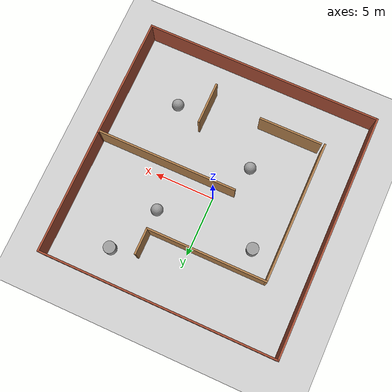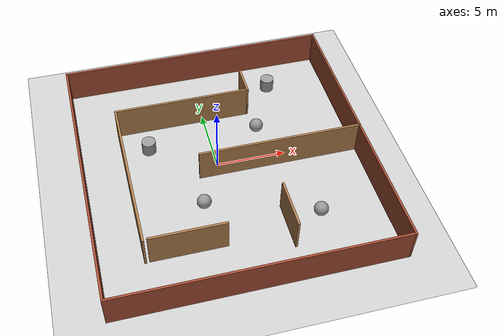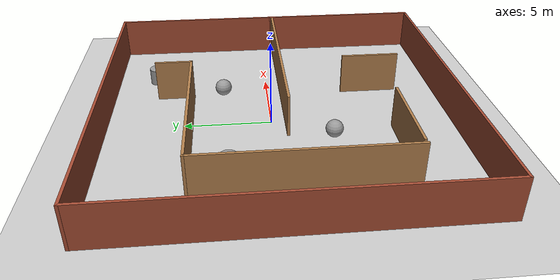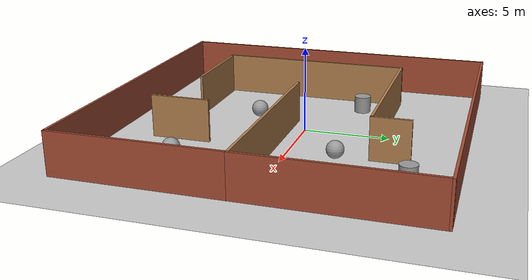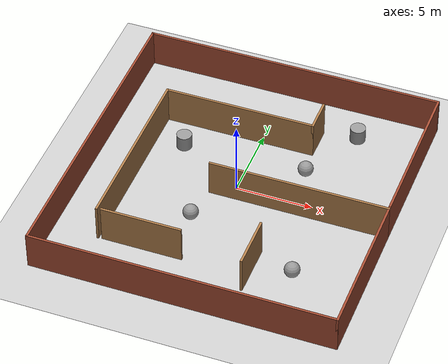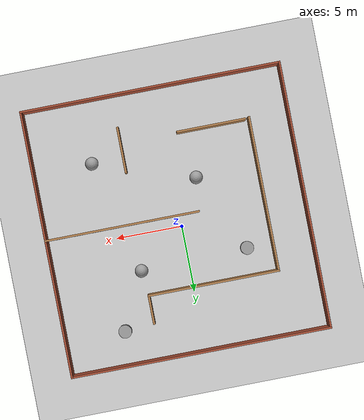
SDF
<sdf version="1.7">
 <world name="default">
  <light name="sun" type="directional">
   <pose>0 0 10 0 -0 0</pose>
   <diffuse>0.8 0.8 0.8 1</diffuse>
   <specular>0.2 0.2 0.2 1</specular>
   <attenuation>
    <range>1000</range>
    <constant>0.9</constant>
    <linear>0.01</linear>
    <quadratic>0.001</quadratic>
   </attenuation>
   <direction>-0.5 0.1 -0.9</direction>
   <spot><inner_angle>0</inner_angle><outer_angle>0</outer_angle><falloff>0</falloff></spot>
  </light>
  <model name="ground_plane">
   <static>1</static>
   <link name="link">
    <collision name="collision">
     <geometry><plane><normal>0 0 1</normal><size>100 100</size></plane></geometry>
     <surface>
      <contact><collide_bitmask>65535</collide_bitmask></contact>
      <friction><ode><mu>100</mu><mu2>50</mu2></ode></friction>
     </surface>
    </collision>
    <visual name="visual">
     <cast_shadows>0</cast_shadows>
     <geometry><plane><normal>0 0 1</normal><size>100 100</size></plane></geometry>
     <material>
      <script><uri>file://media/materials/scripts/gazebo.material</uri><name>Gazebo/Grey</name></script>
     </material>
    </visual>
   </link>
  </model>
  <gravity>0 0 -9.8</gravity>
  <magnetic_field>6e-06 2.3e-05 -4.2e-05</magnetic_field>
  <atmosphere type="adiabatic"/>
  <physics type="ode">
   <max_step_size>0.001</max_step_size>
   <real_time_factor>1</real_time_factor>
   <real_time_update_rate>1000</real_time_update_rate>
  </physics>
  <scene><ambient>0.4 0.4 0.4 1</ambient><background>0.7 0.7 0.7 1</background><shadows>1</shadows></scene>
  <spherical_coordinates>
   <surface_model>EARTH_WGS84</surface_model>
   <latitude_deg>0</latitude_deg>
   <longitude_deg>0</longitude_deg>
   <elevation>0</elevation>
   <heading_deg>0</heading_deg>
  </spherical_coordinates>
  <model name="world1">
   <pose>0.38 -0.56 0 0 -0 0</pose>
   <link name="Wall_0">
    <collision name="Wall_0_Collision">
     <geometry><box><size>11.75 0.15 2.5</size></box></geometry>
     <pose>0 0 1.25 0 -0 0</pose>
    </collision>
    <visual name="Wall_0_Visual">
     <pose>0 0 1.25 0 -0 0</pose>
     <geometry><box><size>11.75 0.15 2.5</size></box></geometry>
     <material>
      <script><uri>file://media/materials/scripts/gazebo.material</uri><name>Gazebo/Wood</name></script>
      <ambient>1 1 1 1</ambient>
     </material>
     <meta><layer>0</layer></meta>
    </visual>
    <pose>4 -0.3 0 0 -0 0</pose>
   </link>
   <link name="Wall_1">
    <collision name="Wall_1_Collision">
     <geometry><box><size>10.5 0.15 2.5</size></box></geometry>
     <pose>0 0 1.25 0 -0 0</pose>
    </collision>
    <visual name="Wall_1_Visual">
     <pose>0 0 1.25 0 -0 0</pose>
     <geometry><box><size>10.5 0.15 2.5</size></box></geometry>
     <material>
      <script><uri>file://media/materials/scripts/gazebo.material</uri><name>Gazebo/Bricks</name></script>
      <ambient>1 1 1 1</ambient>
     </material>
     <meta><layer>0</layer></meta>
    </visual>
    <pose>9.8 4.875 0 0 -0 1.5708</pose>
   </link>
   <link name="Wall_10">
    <collision name="Wall_10_Collision">
     <geometry><box><size>3.5 0.15 2.5</size></box></geometry>
     <pose>0 0 1.25 0 -0 0</pose>
    </collision>
    <visual name="Wall_10_Visual">
     <pose>0 0 1.25 0 -0 0</pose>
     <geometry><box><size>3.5 0.15 2.5</size></box></geometry>
     <material>
      <script><uri>file://media/materials/scripts/gazebo.material</uri><name>Gazebo/Wood</name></script>
      <ambient>1 1 1 1</ambient>
     </material>
     <meta><layer>0</layer></meta>
    </visual>
    <pose>2.95487 -5.8643 0 0 -0 1.5708</pose>
   </link>
   <link name="Wall_12">
    <collision name="Wall_12_Collision">
     <geometry><box><size>10 0.15 2.5</size></box></geometry>
     <pose>0 0 1.25 0 -0 0</pose>
    </collision>
    <visual name="Wall_12_Visual">
     <pose>0 0 1.25 0 -0 0</pose>
     <geometry><box><size>10 0.15 2.5</size></box></geometry>
     <material>
      <script><uri>file://media/materials/scripts/gazebo.material</uri><name>Gazebo/Wood</name></script>
      <ambient>1 1 1 1</ambient>
     </material>
     <meta><layer>0</layer></meta>
    </visual>
    <pose>-1.88461 5.15451 0 0 -0 0</pose>
   </link>
   <link name="Wall_14">
    <collision name="Wall_14_Collision">
     <geometry><box><size>11.75 0.15 2.5</size></box></geometry>
     <pose>0 0 1.25 0 -0 0</pose>
    </collision>
    <visual name="Wall_14_Visual">
     <pose>0 0 1.25 0 -0 0</pose>
     <geometry><box><size>11.75 0.15 2.5</size></box></geometry>
     <material>
      <script><uri>file://media/materials/scripts/gazebo.material</uri><name>Gazebo/Wood</name></script>
      <ambient>1 1 1 1</ambient>
     </material>
     <meta><layer>0</layer></meta>
    </visual>
    <pose>-6.80961 -0.645485 0 0 -0 -1.5708</pose>
   </link>
   <link name="Wall_16">
    <collision name="Wall_16_Collision">
     <geometry><box><size>5.25 0.15 2.5</size></box></geometry>
     <pose>0 0 1.25 0 -0 0</pose>
    </collision>
    <visual name="Wall_16_Visual">
     <pose>0 0 1.25 0 -0 0</pose>
     <geometry><box><size>5.25 0.15 2.5</size></box></geometry>
     <material>
      <script><uri>file://media/materials/scripts/gazebo.material</uri><name>Gazebo/Wood</name></script>
      <ambient>1 1 1 1</ambient>
     </material>
     <meta><layer>0</layer></meta>
    </visual>
    <pose>-3.93412 -6.40011 0 0 -0 0</pose>
   </link>
   <link name="Wall_18">
    <collision name="Wall_18_Collision">
     <geometry><box><size>2.25 0.15 2.5</size></box></geometry>
     <pose>0 0 1.25 0 -0 0</pose>
    </collision>
    <visual name="Wall_18_Visual">
     <pose>0 0 1.25 0 -0 0</pose>
     <geometry><box><size>2.25 0.15 2.5</size></box></geometry>
     <material>
      <script><uri>file://media/materials/scripts/gazebo.material</uri><name>Gazebo/Wood</name></script>
      <ambient>1 1 1 1</ambient>
     </material>
     <meta><layer>0</layer></meta>
    </visual>
    <pose>3.0404 6.20451 0 0 -0 1.5708</pose>
   </link>
   <link name="Wall_4">
    <collision name="Wall_4_Collision">
     <geometry><box><size>19.75 0.15 2.5</size></box></geometry>
     <pose>0 0 1.25 0 -0 0</pose>
    </collision>
    <visual name="Wall_4_Visual">
     <pose>0 0 1.25 0 -0 0</pose>
     <geometry><box><size>19.75 0.15 2.5</size></box></geometry>
     <material>
      <script><uri>file://media/materials/scripts/gazebo.material</uri><name>Gazebo/Bricks</name></script>
      <ambient>1 1 1 1</ambient>
     </material>
     <meta><layer>0</layer></meta>
    </visual>
    <pose>-0 10.05 0 0 -0 3.14159</pose>
   </link>
   <link name="Wall_5">
    <collision name="Wall_5_Collision">
     <geometry><box><size>20.25 0.15 2.5</size></box></geometry>
     <pose>0 0 1.25 0 -0 0</pose>
    </collision>
    <visual name="Wall_5_Visual">
     <pose>0 0 1.25 0 -0 0</pose>
     <geometry><box><size>20.25 0.15 2.5</size></box></geometry>
     <material>
      <script><uri>file://media/materials/scripts/gazebo.material</uri><name>Gazebo/Bricks</name></script>
      <ambient>1 1 1 1</ambient>
     </material>
     <meta><layer>0</layer></meta>
    </visual>
    <pose>-9.8 0 0 0 -0 -1.5708</pose>
   </link>
   <link name="Wall_6">
    <collision name="Wall_6_Collision">
     <geometry><box><size>19.75 0.15 2.5</size></box></geometry>
     <pose>0 0 1.25 0 -0 0</pose>
    </collision>
    <visual name="Wall_6_Visual">
     <pose>0 0 1.25 0 -0 0</pose>
     <geometry><box><size>19.75 0.15 2.5</size></box></geometry>
     <material>
      <script><uri>file://media/materials/scripts/gazebo.material</uri><name>Gazebo/Bricks</name></script>
      <ambient>1 1 1 1</ambient>
     </material>
     <meta><layer>0</layer></meta>
    </visual>
    <pose>-0 -10.05 0 0 -0 0</pose>
   </link>
   <link name="Wall_7">
    <collision name="Wall_7_Collision">
     <geometry><box><size>10 0.15 2.5</size></box></geometry>
     <pose>0 0 1.25 0 -0 0</pose>
    </collision>
    <visual name="Wall_7_Visual">
     <pose>0 0 1.25 0 -0 0</pose>
     <geometry><box><size>10 0.15 2.5</size></box></geometry>
     <material>
      <script><uri>file://media/materials/scripts/gazebo.material</uri><name>Gazebo/Bricks</name></script>
      <ambient>1 1 1 1</ambient>
     </material>
     <meta><layer>0</layer></meta>
    </visual>
    <pose>9.8 -5.125 0 0 -0 1.5708</pose>
   </link>
   <static>1</static>
  </model>
  <model name="unit_sphere">
   <pose>-1.74663 -3.41399 0.5 0 -0 0</pose>
   <link name="link">
    <inertial>
     <mass>1</mass>
     <inertia><ixx>0.1</ixx><ixy>0</ixy><ixz>0</ixz><iyy>0.1</iyy><iyz>0</iyz><izz>0.1</izz></inertia>
    </inertial>
    <collision name="collision"><geometry><sphere><radius>0.5</radius></sphere></geometry></collision>
    <visual name="visual">
     <geometry><sphere><radius>0.5</radius></sphere></geometry>
     <material>
      <script><name>Gazebo/Grey</name><uri>file://media/materials/scripts/gazebo.material</uri></script>
     </material>
    </visual>
   </link>
  </model>
  <model name="unit_cylinder">
   <pose>5.69675 6.95848 0.499993 -3e-06 -3e-06 0</pose>
   <link name="link">
    <inertial>
     <mass>1</mass>
     <inertia><ixx>0.145833</ixx><ixy>0</ixy><ixz>0</ixz><iyy>0.145833</iyy><iyz>0</iyz><izz>0.125</izz></inertia>
    </inertial>
    <collision name="collision">
     <geometry><cylinder><radius>0.5</radius><length>1</length></cylinder></geometry>
    </collision>
    <visual name="visual">
     <geometry><cylinder><radius>0.5</radius><length>1</length></cylinder></geometry>
     <material>
      <script><name>Gazebo/Grey</name><uri>file://media/materials/scripts/gazebo.material</uri></script>
     </material>
    </visual>
   </link>
  </model>
  <model name="unit_sphere_0">
   <pose>5.7762 -5.91439 0.5 0 -0 0</pose>
   <link name="link">
    <inertial>
     <mass>1</mass>
     <inertia><ixx>0.1</ixx><ixy>0</ixy><ixz>0</ixz><iyy>0.1</iyy><iyz>0</iyz><izz>0.1</izz></inertia>
    </inertial>
    <collision name="collision"><geometry><sphere><radius>0.5</radius></sphere></geometry></collision>
    <visual name="visual">
     <geometry><sphere><radius>0.5</radius></sphere></geometry>
     <material>
      <script><name>Gazebo/Grey</name><uri>file://media/materials/scripts/gazebo.material</uri></script>
     </material>
    </visual>
   </link>
  </model>
  <model name="unit_cylinder_0">
   <pose>-4.49761 2.52691 0.499993 -3e-06 -4e-06 -0</pose>
   <link name="link">
    <inertial>
     <mass>1</mass>
     <inertia><ixx>0.145833</ixx><ixy>0</ixy><ixz>0</ixz><iyy>0.145833</iyy><iyz>0</iyz><izz>0.125</izz></inertia>
    </inertial>
    <collision name="collision">
     <geometry><cylinder><radius>0.5</radius><length>1</length></cylinder></geometry>
    </collision>
    <visual name="visual">
     <geometry><cylinder><radius>0.5</radius><length>1</length></cylinder></geometry>
     <material>
      <script><name>Gazebo/Grey</name><uri>file://media/materials/scripts/gazebo.material</uri></script>
     </material>
    </visual>
   </link>
  </model>
  <model name="unit_sphere_1">
   <pose>3.63672 2.71935 0.5 0 -0 0</pose>
   <link name="link">
    <inertial>
     <mass>1</mass>
     <inertia><ixx>0.1</ixx><ixy>0</ixy><ixz>0</ixz><iyy>0.1</iyy><iyz>0</iyz><izz>0.1</izz></inertia>
    </inertial>
    <collision name="collision"><geometry><sphere><radius>0.5</radius></sphere></geometry></collision>
    <visual name="visual">
     <geometry><sphere><radius>0.5</radius></sphere></geometry>
     <material>
      <script><name>Gazebo/Grey</name><uri>file://media/materials/scripts/gazebo.material</uri></script>
     </material>
    </visual>
   </link>
  </model>
  <light name="user_point_light_0" type="point">
   <pose>-5.84372 6.83771 1 0 -0 0</pose>
   <diffuse>0.5 0.5 0.5 1</diffuse>
   <specular>0.1 0.1 0.1 1</specular>
   <attenuation>
    <range>20</range>
    <constant>0.5</constant>
    <linear>0.01</linear>
    <quadratic>0.001</quadratic>
   </attenuation>
   <cast_shadows>0</cast_shadows>
   <direction>0 0 -1</direction>
  </light>
  <light name="user_point_light_1" type="point">
   <pose>4.63625 -4.72135 1 0 -0 0</pose>
   <diffuse>0.5 0.5 0.5 1</diffuse>
   <specular>0.1 0.1 0.1 1</specular>
   <attenuation>
    <range>20</range>
    <constant>0.5</constant>
    <linear>0.01</linear>
    <quadratic>0.001</quadratic>
   </attenuation>
   <cast_shadows>0</cast_shadows>
   <direction>0 0 -1</direction>
  </light>
  <light name="user_spot_light_0" type="spot">
   <pose>6.26873 4.81602 1 0 -0 0</pose>
   <diffuse>0.5 0.5 0.5 1</diffuse>
   <specular>0.1 0.1 0.1 1</specular>
   <direction>0 0 -1</direction>
   <attenuation>
    <range>20</range>
    <constant>0.5</constant>
    <linear>0.01</linear>
    <quadratic>0.001</quadratic>
   </attenuation>
   <cast_shadows>0</cast_shadows>
   <spot><inner_angle>0.6</inner_angle><outer_angle>1</outer_angle><falloff>1</falloff></spot>
  </light>
  <light name="user_point_light_2" type="point">
   <pose>-7.64547 -8.0423 1 0 -0 0</pose>
   <diffuse>0.5 0.5 0.5 1</diffuse>
   <specular>0.1 0.1 0.1 1</specular>
   <attenuation>
    <range>20</range>
    <constant>0.5</constant>
    <linear>0.01</linear>
    <quadratic>0.001</quadratic>
   </attenuation>
   <cast_shadows>0</cast_shadows>
   <direction>0 0 -1</direction>
  </light>
  <light name="user_directional_light_0" type="directional">
   <pose>7.71399 -2.93817 1 0 -0 0</pose>
   <diffuse>0.5 0.5 0.5 1</diffuse>
   <specular>0.1 0.1 0.1 1</specular>
   <direction>0.1 0.1 -0.9</direction>
   <attenuation>
    <range>20</range>
    <constant>0.5</constant>
    <linear>0.01</linear>
    <quadratic>0.001</quadratic>
   </attenuation>
  </light>
 </world>
</sdf>
